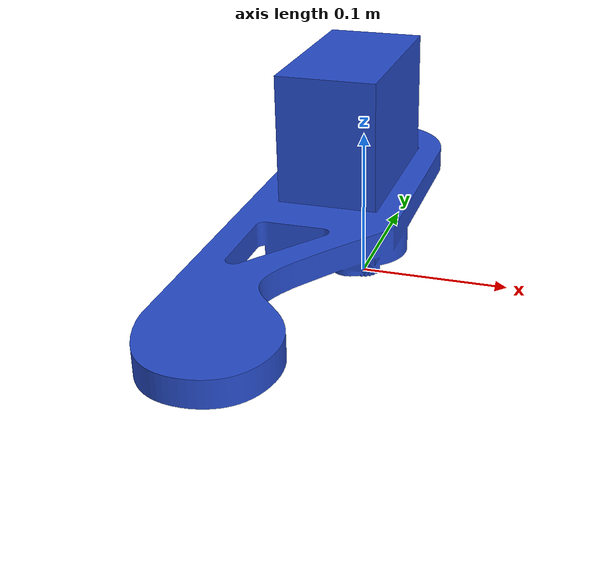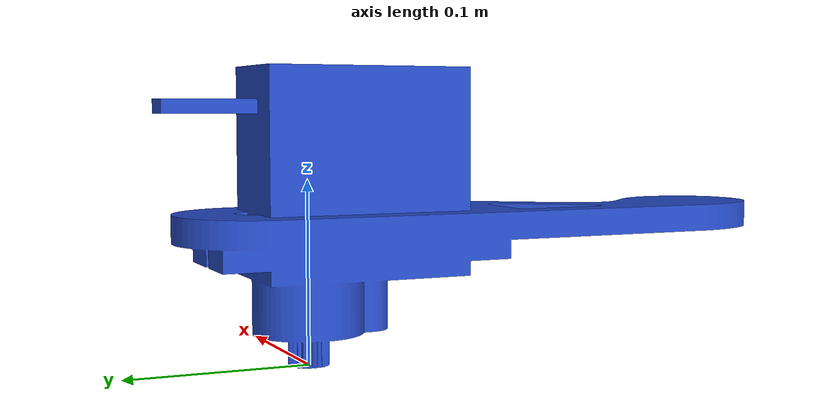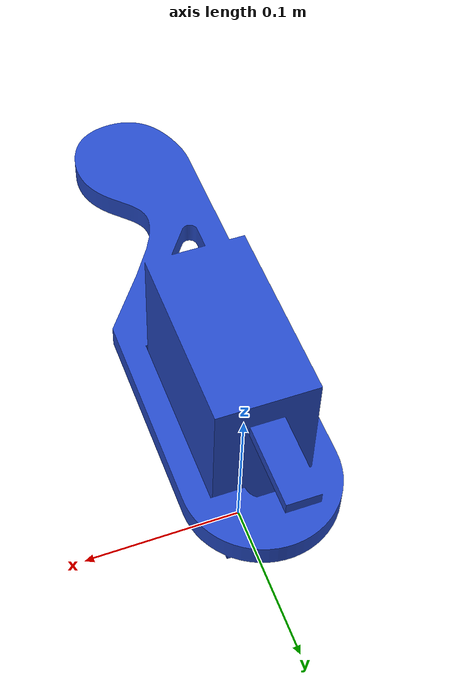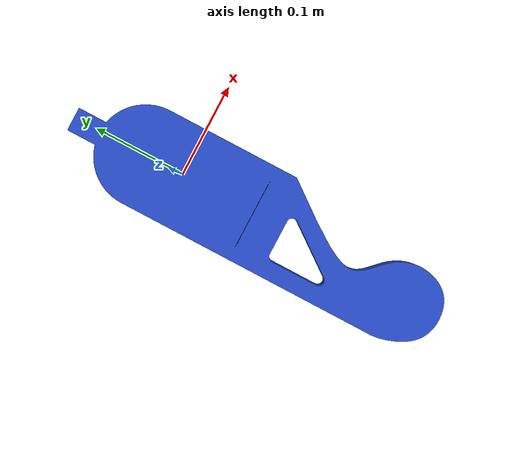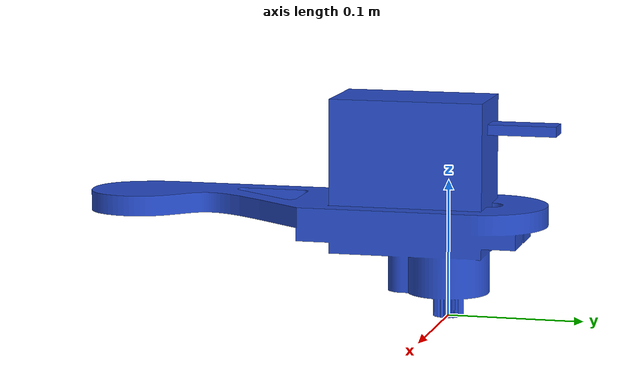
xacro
<?xml version="1.0"?>

<robot name="billi" xmlns:xacro="http://www.ros.org/wiki/xacro">

<!--LEFT LOWER HAND LINK -->
<link name="leg-lower4">
    	<visual>
    		<origin rpy="0 3.14 0" xyz="0 0 0"/>
      		<geometry>
        		<mesh filename="package://billi_sim/models/meshes/leg2-lower.stl" scale ="5 5 5"/>
     		</geometry>
      		<material name="blue"/>
    	</visual>
    	<collision>
		<origin rpy="0 3.14 0" xyz="0 0 0"/>
      		<geometry>
        		<mesh filename="package://billi_sim/models/meshes/leg2-lower.stl" scale ="5 5 5"/>
      		</geometry>
    	</collision>
	<inertial>
		  <mass value="1.0"/>
		  <origin rpy="0 0 3.14" xyz="0 0 0.1"/>
		  <inertia ixx="0.0395416666667" ixy="0" ixz="0" iyy="0.106208333333" iyz="0" izz="0.106208333333"/>
	</inertial>
</link>
<gazebo reference="leg-lower4">
        <kp>1000.0</kp>
        <kd>1000.0</kd>
        <mu1>10.0</mu1>
        <mu2>10.0</mu2>
        <material>Gazebo/blue</material>
    </gazebo>
</robot>
